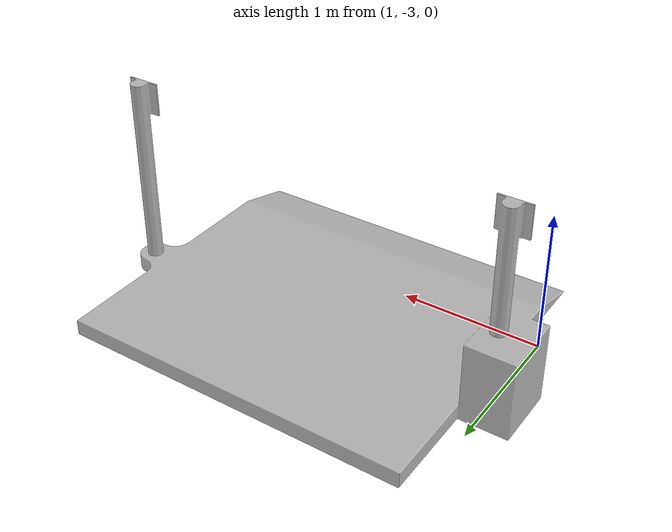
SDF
<sdf version='1.6'>
  <model name='charger-platform'>
    <link name='charger_urdf'>
      <pose frame=''>0 0 0 0 -0 0</pose>
      <inertial>
        <pose frame=''>1.8398 -1.9097 0 0 -0 0</pose>
        <mass>3778.9</mass>
        <inertia>
          <ixx>999.34</ixx>
          <ixy>47.546</ixy>
          <ixz>85.759</ixz>
          <iyy>2269.6</iyy>
          <iyz>21.978</iyz>
          <izz>3058.2</izz>
        </inertia>
      </inertial>
      <collision name='charger_urdf_collision'>
        <pose frame=''>0 0 0 1.5708 -0 0</pose>
        <geometry>
          <mesh>
            <scale>1 1 1</scale>
            <uri>model://charger_urdf/meshes/charger_urdf.dae</uri>
          </mesh>
        </geometry>
      </collision>
      <visual name='charger_urdf_visual'>
        <pose frame=''>0 0 0 1.5708 -0 0</pose>
        <geometry>
          <mesh>
            <scale>1 1 1</scale>
            <uri>model://charger_urdf/meshes/charger_urdf.dae</uri>
          </mesh>
        </geometry>
      </visual>
    </link>
  </model>
</sdf>
